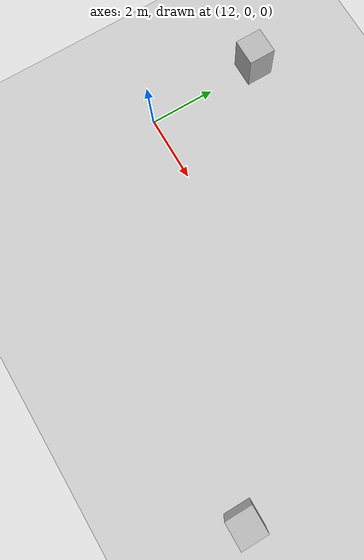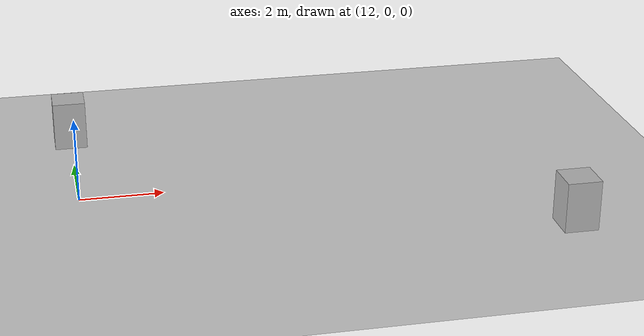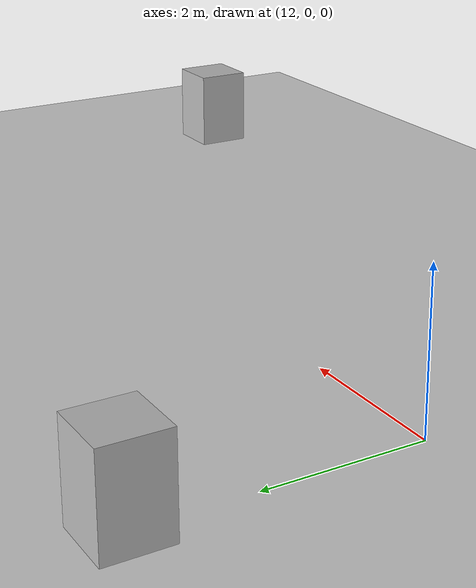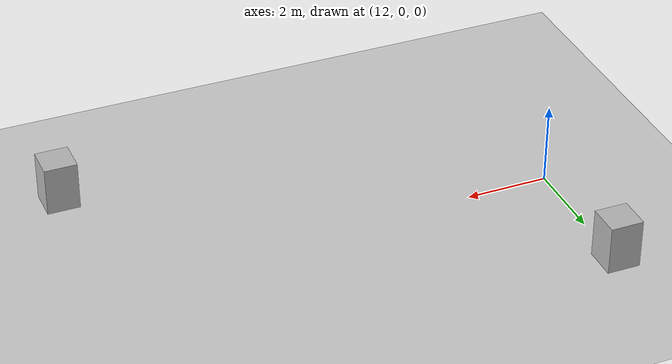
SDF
<?xml version="1.0"?>
<sdf version="1.6">
  <world name="v2-04g-r4-cruise-s5061">
    <gravity>0 0 -9.81</gravity>
    <physics name="v2_deterministic" type="ode">
      <max_step_size>0.002</max_step_size>
      <real_time_update_rate>500</real_time_update_rate>
    </physics>
    <include>
      <uri>model://sun</uri>
    </include>
    <include>
      <uri>model://ground_plane</uri>
    </include>
    <model name="cruise-left">
      <static>true</static>
      <pose>11.996985817 3.486357698 0.600000000 0 0 -0.000104159</pose>
      <link name="link">
        <collision name="collision">
          <geometry>
            <box>
              <size>0.800000 0.800000 1.200000</size>
            </box>
          </geometry>
        </collision>
        <visual name="visual">
          <geometry>
            <box>
              <size>0.800000 0.800000 1.200000</size>
            </box>
          </geometry>
        </visual>
      </link>
    </model>
    <model name="cruise-right">
      <static>true</static>
      <pose>22.961633277 -3.548585653 0.600000000 0 0 -0.002237361</pose>
      <link name="link">
        <collision name="collision">
          <geometry>
            <box>
              <size>0.800000 0.800000 1.200000</size>
            </box>
          </geometry>
        </collision>
        <visual name="visual">
          <geometry>
            <box>
              <size>0.800000 0.800000 1.200000</size>
            </box>
          </geometry>
        </visual>
      </link>
    </model>
  </world>
</sdf>
